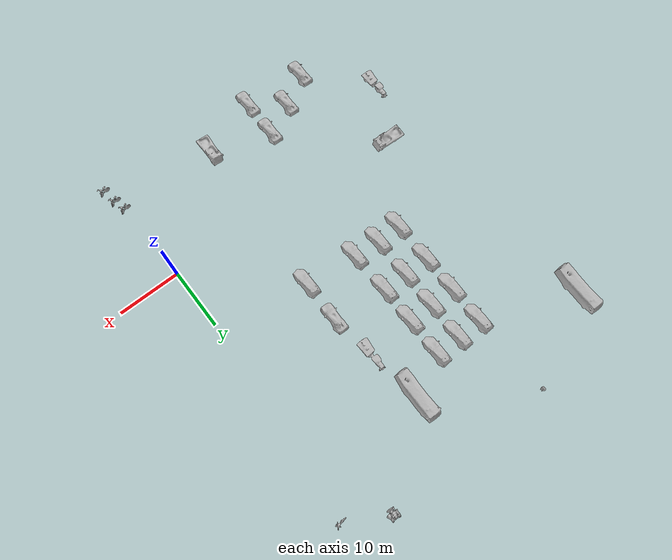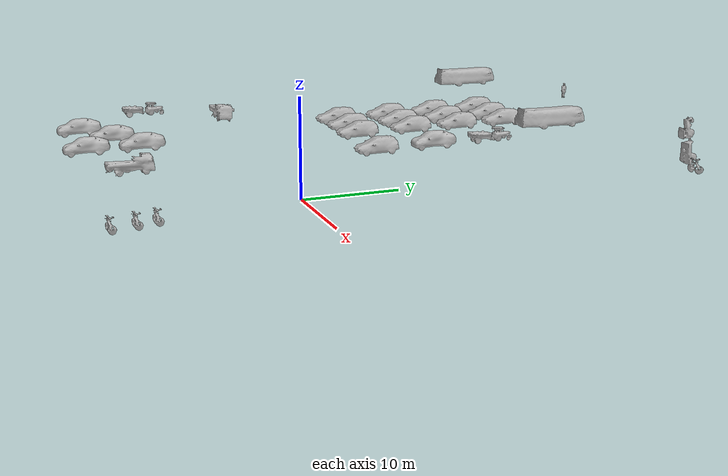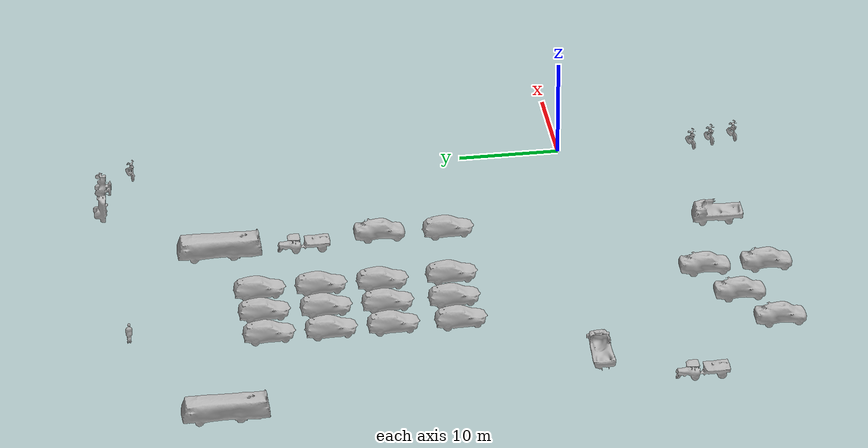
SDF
<sdf version="1.7">
 <world name="smoll_world">
  <model name="ground_plane">
   <static>1</static>
   <link name="link">
    <collision name="collision">
     <geometry><plane><normal>0 0 1</normal><size>100 100</size></plane></geometry>
     <surface><friction><ode><mu>100</mu><mu2>50</mu2></ode></friction></surface>
    </collision>
   </link>
  </model>
  <model name="kare-bus-2_clone">
   <model name="kare-bus">
    <static>1</static>
    <link name="link">
     <collision name="collision">
      <geometry><mesh><scale>8 8 8</scale><uri>model://kare-bus/meshes/kare-bus.obj</uri></mesh></geometry>
     </collision>
     <visual name="visual">
      <geometry><mesh><scale>8 8 8</scale><uri>model://kare-bus/meshes/kare-bus.obj</uri></mesh></geometry>
     </visual>
    </link>
    <pose>-3.3e-05 -0 -5e-06 1.57109 0.060055 1.57564</pose>
   </model>
   <static>0</static>
   <pose>-16.5988 36.2057 2.05341 0 0 1.55954</pose>
  </model>
  <model name="kare-bus-2_clone_0">
   <model name="kare-bus">
    <static>1</static>
    <link name="link">
     <collision name="collision">
      <geometry><mesh><scale>8 8 8</scale><uri>model://kare-bus/meshes/kare-bus.obj</uri></mesh></geometry>
     </collision>
     <visual name="visual">
      <geometry><mesh><scale>8 8 8</scale><uri>model://kare-bus/meshes/kare-bus.obj</uri></mesh></geometry>
     </visual>
    </link>
    <pose>-3.3e-05 -0 -5e-06 1.57109 0.060055 1.57564</pose>
   </model>
   <static>0</static>
   <pose>-45.2255 38.7045 2.05341 0 -0 1.56846</pose>
  </model>
  <model name="kare-man">
   <static>1</static>
   <link name="link">
    <collision name="collision">
     <geometry>
      <mesh><scale>2 2 2</scale><uri>/home/amadeus/model_editor_models/kare-man/meshes/kare-man.obj</uri></mesh>
     </geometry>
    </collision>
    <visual name="visual">
     <geometry>
      <mesh><scale>2 2 2</scale><uri>/home/amadeus/model_editor_models/kare-man/meshes/kare-man.obj</uri></mesh>
     </geometry>
    </visual>
   </link>
   <pose>-31.2235 46.3855 2.03741 1.57081 -0.001383 1.55971</pose>
  </model>
  <model name="kare-lorry3_clone">
   <model name="kare-lorry2">
    <model name="kare-emptylorry">
     <static>1</static>
     <link name="link">
      <collision name="collision">
       <geometry>
        <mesh>
         <scale>5 5 5</scale>
         <uri>/home/amadeus/model_editor_models/kare-emptylorry/meshes/kare-emptylorry.obj</uri>
        </mesh>
       </geometry>
      </collision>
      <visual name="visual">
       <geometry>
        <mesh>
         <scale>5 5 5</scale>
         <uri>/home/amadeus/model_editor_models/kare-emptylorry/meshes/kare-emptylorry.obj</uri>
        </mesh>
       </geometry>
      </visual>
     </link>
     <pose>-2.6e-05 -2.7e-05 -2e-06 1.55178 -0.050932 -1.58567</pose>
    </model>
    <static>0</static>
    <pose>2e-06 0 0.971266 0 -0 0</pose>
   </model>
   <static>1</static>
   <allow_auto_disable>0</allow_auto_disable>
   <plugin name="model_move" filename="/home/amadeus/Downloads/dev_ws/src/articubot_one/worlds/build/libmodel_move.so"/>
   <pose>-15.5223 -13.4936 -0 0 0 1.55929</pose>
  </model>
  <model name="kare-lorry3_clone_5">
   <model name="kare-lorry2">
    <model name="kare-emptylorry">
     <static>1</static>
     <link name="link">
      <collision name="collision">
       <geometry>
        <mesh>
         <scale>5 5 5</scale>
         <uri>/home/amadeus/model_editor_models/kare-emptylorry/meshes/kare-emptylorry.obj</uri>
        </mesh>
       </geometry>
      </collision>
      <visual name="visual">
       <geometry>
        <mesh>
         <scale>5 5 5</scale>
         <uri>/home/amadeus/model_editor_models/kare-emptylorry/meshes/kare-emptylorry.obj</uri>
        </mesh>
       </geometry>
      </visual>
     </link>
     <pose>-2.6e-05 -2.7e-05 -2e-06 1.55178 -0.050932 -1.58567</pose>
    </model>
    <static>0</static>
    <pose>2e-06 0 0.971266 0 -0 0</pose>
   </model>
   <static>1</static>
   <allow_auto_disable>0</allow_auto_disable>
   <plugin name="model_move" filename="/home/amadeus/Downloads/dev_ws/src/articubot_one/worlds/build/libmodel_move.so"/>
   <pose>-38.9422 2.0981 0 0 -0 0</pose>
  </model>
  <model name="kare-cycle2">
   <model name="kare-cycle2">
    <model name="kare-cycle-2">
     <link name="link">
      <inertial>
       <mass>1</mass>
       <inertia><ixx>1</ixx><ixy>0</ixy><ixz>0</ixz><iyy>1</iyy><iyz>0</iyz><izz>1</izz></inertia>
      </inertial>
      <visual name="visual">
       <geometry><mesh><scale>2 2 2</scale><uri>model://kare-cycle/meshes/kare-cycle.obj</uri></mesh></geometry>
       <material><shader type="pixel"/></material>
      </visual>
      <collision name="collision">
       <geometry>
        <mesh><uri>/home/amadeus/model_editor_models/kare-cycle/meshes/kare-cycle.obj</uri><scale>2 2 2</scale></mesh>
       </geometry>
       <surface>
        <friction>
         <ode><mu>1</mu><mu2>1</mu2><fdir1>0 0 0</fdir1><slip1>0</slip1><slip2>0</slip2></ode>
         <torsional>
          <coefficient>1</coefficient>
          <patch_radius>0</patch_radius>
          <surface_radius>0</surface_radius>
          <use_patch_radius>1</use_patch_radius>
          <ode><slip>0</slip></ode>
         </torsional>
        </friction>
        <bounce><restitution_coefficient>0</restitution_coefficient><threshold>1e+06</threshold></bounce>
        <contact>
         <collide_without_contact>0</collide_without_contact>
         <collide_without_contact_bitmask>1</collide_without_contact_bitmask>
         <collide_bitmask>1</collide_bitmask>
         <ode>
          <soft_cfm>0</soft_cfm>
          <soft_erp>0.2</soft_erp>
          <kp>1e+13</kp>
          <kd>1</kd>
          <max_vel>0.01</max_vel>
          <min_depth>0</min_depth>
         </ode>
         <bullet>
          <split_impulse>1</split_impulse>
          <split_impulse_penetration_threshold>-0.01</split_impulse_penetration_threshold>
          <soft_cfm>0</soft_cfm>
          <soft_erp>0.2</soft_erp>
          <kp>1e+13</kp>
          <kd>1</kd>
         </bullet>
        </contact>
       </surface>
      </collision>
     </link>
     <static>1</static>
     <pose>4.5e-05 3e-06 6e-06 1.56443 -0.051805 1.69313</pose>
    </model>
    <static>0</static>
    <pose>9e-06 4e-06 -1e-06 0 -0 0</pose>
   </model>
   <static>0</static>
   <pose>2.25711 43.0319 0 0 0 0</pose>
  </model>
  <model name="kare-whitecar">
   <static>1</static>
   <link name="roof_link">
    <pose>0 0 3 0 -0 0</pose>
    <self_collide>1</self_collide>
    <enable_wind>1</enable_wind>
    <kinematic>1</kinematic>
   </link>
   <link name="link">
    <collision name="collision">
     <geometry>
      <mesh>
       <scale>5 5 5</scale>
       <uri>/home/amadeus/model_editor_models/kare-whitecar/meshes/kare-whitecar.obj</uri>
      </mesh>
     </geometry>
    </collision>
    <visual name="visual">
     <geometry>
      <mesh>
       <scale>5 5 5</scale>
       <uri>/home/amadeus/model_editor_models/kare-whitecar/meshes/kare-whitecar.obj</uri>
      </mesh>
     </geometry>
    </visual>
   </link>
   <pose>-14.2865 20.1093 1.09307 1.53975 -0 0</pose>
  </model>
  <model name="kare-redcar">
   <static>1</static>
   <link name="link">
    <collision name="collision">
     <geometry><mesh><scale>5 5 5</scale><uri>model://kare-redcar/meshes/kare-redcar.obj</uri></mesh></geometry>
    </collision>
    <visual name="visual">
     <geometry><mesh><scale>5 5 5</scale><uri>model://kare-redcar/meshes/kare-redcar.obj</uri></mesh></geometry>
    </visual>
   </link>
   <pose>-14.3919 13.2984 1.05721 1.56187 -0 0</pose>
  </model>
  <model name="kare-truck">
   <static>1</static>
   <link name="link">
    <collision name="collision">
     <geometry><mesh><scale>5 5 5</scale><uri>model://kare-truck/meshes/kare-truck.obj</uri></mesh></geometry>
    </collision>
    <visual name="visual">
     <geometry><mesh><scale>5 5 5</scale><uri>model://kare-truck/meshes/kare-truck.obj</uri></mesh></geometry>
    </visual>
   </link>
   <pose>-15.3088 27.6444 0.797515 1.55509 -0 0</pose>
  </model>
  <model name="kare-truck_clone">
   <static>1</static>
   <link name="link">
    <collision name="collision">
     <geometry><mesh><scale>5 5 5</scale><uri>model://kare-truck/meshes/kare-truck.obj</uri></mesh></geometry>
    </collision>
    <visual name="visual">
     <geometry><mesh><scale>5 5 5</scale><uri>model://kare-truck/meshes/kare-truck.obj</uri></mesh></geometry>
    </visual>
   </link>
   <pose>-4.02275 46.5958 0.931027 -3.08117 -0 0</pose>
  </model>
  <model name="kare-truck_clone_1">
   <static>1</static>
   <link name="link">
    <collision name="collision">
     <geometry><mesh><scale>5 5 5</scale><uri>model://kare-truck/meshes/kare-truck.obj</uri></mesh></geometry>
    </collision>
    <visual name="visual">
     <geometry><mesh><scale>5 5 5</scale><uri>model://kare-truck/meshes/kare-truck.obj</uri></mesh></geometry>
    </visual>
   </link>
   <pose>-43.4966 -6.94322 0.931027 1.55509 -0 0</pose>
  </model>
  <model name="kare-redcar_clone">
   <static>1</static>
   <link name="link">
    <collision name="collision">
     <geometry><mesh><scale>5 5 5</scale><uri>model://kare-redcar/meshes/kare-redcar.obj</uri></mesh></geometry>
    </collision>
    <visual name="visual">
     <geometry><mesh><scale>5 5 5</scale><uri>model://kare-redcar/meshes/kare-redcar.obj</uri></mesh></geometry>
    </visual>
   </link>
   <pose>-22.7453 14.178 1.05721 1.56187 -0 0</pose>
  </model>
  <model name="kare-redcar_clone_0">
   <static>1</static>
   <link name="link">
    <collision name="collision">
     <geometry><mesh><scale>5 5 5</scale><uri>model://kare-redcar/meshes/kare-redcar.obj</uri></mesh></geometry>
    </collision>
    <visual name="visual">
     <geometry><mesh><scale>5 5 5</scale><uri>model://kare-redcar/meshes/kare-redcar.obj</uri></mesh></geometry>
    </visual>
   </link>
   <pose>-27 14.5179 1.05721 1.56187 -0 0</pose>
  </model>
  <model name="kare-redcar_clone_1">
   <static>1</static>
   <link name="link">
    <collision name="collision">
     <geometry><mesh><scale>5 5 5</scale><uri>model://kare-redcar/meshes/kare-redcar.obj</uri></mesh></geometry>
    </collision>
    <visual name="visual">
     <geometry><mesh><scale>5 5 5</scale><uri>model://kare-redcar/meshes/kare-redcar.obj</uri></mesh></geometry>
    </visual>
   </link>
   <pose>-31 14.4476 1.05721 1.56187 -0 0</pose>
  </model>
  <model name="kare-redcar_clone_2">
   <static>1</static>
   <link name="link">
    <collision name="collision">
     <geometry><mesh><scale>5 5 5</scale><uri>model://kare-redcar/meshes/kare-redcar.obj</uri></mesh></geometry>
    </collision>
    <visual name="visual">
     <geometry><mesh><scale>5 5 5</scale><uri>model://kare-redcar/meshes/kare-redcar.obj</uri></mesh></geometry>
    </visual>
   </link>
   <pose>-23 21 1.05721 1.56187 -0 0</pose>
  </model>
  <model name="kare-redcar_clone_3">
   <static>1</static>
   <link name="link">
    <collision name="collision">
     <geometry><mesh><scale>5 5 5</scale><uri>model://kare-redcar/meshes/kare-redcar.obj</uri></mesh></geometry>
    </collision>
    <visual name="visual">
     <geometry><mesh><scale>5 5 5</scale><uri>model://kare-redcar/meshes/kare-redcar.obj</uri></mesh></geometry>
    </visual>
   </link>
   <pose>-27 21 1.05721 1.56187 -0 0</pose>
  </model>
  <model name="kare-redcar_clone_4">
   <static>1</static>
   <link name="link">
    <collision name="collision">
     <geometry><mesh><scale>5 5 5</scale><uri>model://kare-redcar/meshes/kare-redcar.obj</uri></mesh></geometry>
    </collision>
    <visual name="visual">
     <geometry><mesh><scale>5 5 5</scale><uri>model://kare-redcar/meshes/kare-redcar.obj</uri></mesh></geometry>
    </visual>
   </link>
   <pose>-31 21 1.05721 1.56187 -0 0</pose>
  </model>
  <model name="kare-redcar_clone_5">
   <static>1</static>
   <link name="link">
    <collision name="collision">
     <geometry><mesh><scale>5 5 5</scale><uri>model://kare-redcar/meshes/kare-redcar.obj</uri></mesh></geometry>
    </collision>
    <visual name="visual">
     <geometry><mesh><scale>5 5 5</scale><uri>model://kare-redcar/meshes/kare-redcar.obj</uri></mesh></geometry>
    </visual>
   </link>
   <pose>-23 27 1.05721 1.56187 -0 0</pose>
  </model>
  <model name="kare-redcar_clone_6">
   <static>1</static>
   <link name="link">
    <collision name="collision">
     <geometry><mesh><scale>5 5 5</scale><uri>model://kare-redcar/meshes/kare-redcar.obj</uri></mesh></geometry>
    </collision>
    <visual name="visual">
     <geometry><mesh><scale>5 5 5</scale><uri>model://kare-redcar/meshes/kare-redcar.obj</uri></mesh></geometry>
    </visual>
   </link>
   <pose>-27 27 1.05721 1.56187 -0 0</pose>
  </model>
  <model name="kare-redcar_clone_7">
   <static>1</static>
   <link name="link">
    <collision name="collision">
     <geometry><mesh><scale>5 5 5</scale><uri>model://kare-redcar/meshes/kare-redcar.obj</uri></mesh></geometry>
    </collision>
    <visual name="visual">
     <geometry><mesh><scale>5 5 5</scale><uri>model://kare-redcar/meshes/kare-redcar.obj</uri></mesh></geometry>
    </visual>
   </link>
   <pose>-31 27 1.05721 1.56187 -0 0</pose>
  </model>
  <model name="kare-redcar_clone_8">
   <static>1</static>
   <link name="link">
    <collision name="collision">
     <geometry><mesh><scale>5 5 5</scale><uri>model://kare-redcar/meshes/kare-redcar.obj</uri></mesh></geometry>
    </collision>
    <visual name="visual">
     <geometry><mesh><scale>5 5 5</scale><uri>model://kare-redcar/meshes/kare-redcar.obj</uri></mesh></geometry>
    </visual>
   </link>
   <pose>-23 33 1.05721 1.56187 -0 0</pose>
  </model>
  <model name="kare-redcar_clone_9">
   <static>1</static>
   <link name="link">
    <collision name="collision">
     <geometry><mesh><scale>5 5 5</scale><uri>model://kare-redcar/meshes/kare-redcar.obj</uri></mesh></geometry>
    </collision>
    <visual name="visual">
     <geometry><mesh><scale>5 5 5</scale><uri>model://kare-redcar/meshes/kare-redcar.obj</uri></mesh></geometry>
    </visual>
   </link>
   <pose>-27 33 1.05721 1.56187 -0 0</pose>
  </model>
  <model name="kare-redcar_clone_10">
   <static>1</static>
   <link name="link">
    <collision name="collision">
     <geometry><mesh><scale>5 5 5</scale><uri>model://kare-redcar/meshes/kare-redcar.obj</uri></mesh></geometry>
    </collision>
    <visual name="visual">
     <geometry><mesh><scale>5 5 5</scale><uri>model://kare-redcar/meshes/kare-redcar.obj</uri></mesh></geometry>
    </visual>
   </link>
   <pose>-31 33 1.05721 1.56187 -0 0</pose>
  </model>
  <model name="kare-whitecar_clone">
   <static>1</static>
   <link name="roof_link">
    <pose>0 0 3 0 -0 0</pose>
    <self_collide>1</self_collide>
    <enable_wind>1</enable_wind>
    <kinematic>1</kinematic>
   </link>
   <link name="link">
    <collision name="collision">
     <geometry>
      <mesh>
       <scale>5 5 5</scale>
       <uri>/home/amadeus/model_editor_models/kare-whitecar/meshes/kare-whitecar.obj</uri>
      </mesh>
     </geometry>
    </collision>
    <visual name="visual">
     <geometry>
      <mesh>
       <scale>5 5 5</scale>
       <uri>/home/amadeus/model_editor_models/kare-whitecar/meshes/kare-whitecar.obj</uri>
      </mesh>
     </geometry>
    </visual>
   </link>
   <pose>-24.9422 -10.487 1.09307 1.53975 -0 0</pose>
  </model>
  <model name="kare-whitecar_clone_0">
   <static>1</static>
   <link name="roof_link">
    <pose>0 0 3 0 -0 0</pose>
    <self_collide>1</self_collide>
    <enable_wind>1</enable_wind>
    <kinematic>1</kinematic>
   </link>
   <link name="link">
    <collision name="collision">
     <geometry>
      <mesh>
       <scale>5 5 5</scale>
       <uri>/home/amadeus/model_editor_models/kare-whitecar/meshes/kare-whitecar.obj</uri>
      </mesh>
     </geometry>
    </collision>
    <visual name="visual">
     <geometry>
      <mesh>
       <scale>5 5 5</scale>
       <uri>/home/amadeus/model_editor_models/kare-whitecar/meshes/kare-whitecar.obj</uri>
      </mesh>
     </geometry>
    </visual>
   </link>
   <pose>-25 -16.589 1.09307 1.53975 -0 0</pose>
  </model>
  <model name="kare-whitecar_clone_3">
   <static>1</static>
   <link name="roof_link">
    <pose>0 0 3 0 -0 0</pose>
    <self_collide>1</self_collide>
    <enable_wind>1</enable_wind>
    <kinematic>1</kinematic>
   </link>
   <link name="link">
    <collision name="collision">
     <geometry>
      <mesh>
       <scale>5 5 5</scale>
       <uri>/home/amadeus/model_editor_models/kare-whitecar/meshes/kare-whitecar.obj</uri>
      </mesh>
     </geometry>
    </collision>
    <visual name="visual">
     <geometry>
      <mesh>
       <scale>5 5 5</scale>
       <uri>/home/amadeus/model_editor_models/kare-whitecar/meshes/kare-whitecar.obj</uri>
      </mesh>
     </geometry>
    </visual>
   </link>
   <pose>-30 -13 1.09307 1.53975 -0 0</pose>
  </model>
  <model name="kare-whitecar_clone_6">
   <static>1</static>
   <link name="roof_link">
    <pose>0 0 3 0 -0 0</pose>
    <self_collide>1</self_collide>
    <enable_wind>1</enable_wind>
    <kinematic>1</kinematic>
   </link>
   <link name="link">
    <collision name="collision">
     <geometry>
      <mesh>
       <scale>5 5 5</scale>
       <uri>/home/amadeus/model_editor_models/kare-whitecar/meshes/kare-whitecar.obj</uri>
      </mesh>
     </geometry>
    </collision>
    <visual name="visual">
     <geometry>
      <mesh>
       <scale>5 5 5</scale>
       <uri>/home/amadeus/model_editor_models/kare-whitecar/meshes/kare-whitecar.obj</uri>
      </mesh>
     </geometry>
    </visual>
   </link>
   <pose>-35 -16 1.09307 1.53975 -0 0</pose>
  </model>
  <model name="kare-cycle2_clone_11">
   <model name="kare-cycle2">
    <model name="kare-cycle-2">
     <link name="link">
      <inertial>
       <mass>1</mass>
       <inertia><ixx>1</ixx><ixy>0</ixy><ixz>0</ixz><iyy>1</iyy><iyz>0</iyz><izz>1</izz></inertia>
      </inertial>
      <visual name="visual">
       <geometry><mesh><scale>2 2 2</scale><uri>model://kare-cycle/meshes/kare-cycle.obj</uri></mesh></geometry>
       <material><shader type="pixel"/></material>
      </visual>
      <collision name="collision">
       <geometry>
        <mesh><uri>/home/amadeus/model_editor_models/kare-cycle/meshes/kare-cycle.obj</uri><scale>2 2 2</scale></mesh>
       </geometry>
       <surface>
        <friction>
         <ode><mu>1</mu><mu2>1</mu2><fdir1>0 0 0</fdir1><slip1>0</slip1><slip2>0</slip2></ode>
         <torsional>
          <coefficient>1</coefficient>
          <patch_radius>0</patch_radius>
          <surface_radius>0</surface_radius>
          <use_patch_radius>1</use_patch_radius>
          <ode><slip>0</slip></ode>
         </torsional>
        </friction>
        <bounce><restitution_coefficient>0</restitution_coefficient><threshold>1e+06</threshold></bounce>
        <contact>
         <collide_without_contact>0</collide_without_contact>
         <collide_without_contact_bitmask>1</collide_without_contact_bitmask>
         <collide_bitmask>1</collide_bitmask>
         <ode>
          <soft_cfm>0</soft_cfm>
          <soft_erp>0.2</soft_erp>
          <kp>1e+13</kp>
          <kd>1</kd>
          <max_vel>0.01</max_vel>
          <min_depth>0</min_depth>
         </ode>
         <bullet>
          <split_impulse>1</split_impulse>
          <split_impulse_penetration_threshold>-0.01</split_impulse_penetration_threshold>
          <soft_cfm>0</soft_cfm>
          <soft_erp>0.2</soft_erp>
          <kp>1e+13</kp>
          <kd>1</kd>
         </bullet>
        </contact>
       </surface>
      </collision>
     </link>
     <static>1</static>
     <pose>4.5e-05 3e-06 6e-06 1.56443 -0.051805 1.69313</pose>
    </model>
    <static>0</static>
    <pose>9e-06 4e-06 -1e-06 0 -0 0</pose>
   </model>
   <static>0</static>
   <pose>0.462435 -14 0 0 0 0</pose>
  </model>
  <model name="kare-cycle2_clone_12">
   <model name="kare-cycle2">
    <model name="kare-cycle-2">
     <link name="link">
      <inertial>
       <mass>1</mass>
       <inertia><ixx>1</ixx><ixy>0</ixy><ixz>0</ixz><iyy>1</iyy><iyz>0</iyz><izz>1</izz></inertia>
      </inertial>
      <visual name="visual">
       <geometry><mesh><scale>2 2 2</scale><uri>model://kare-cycle/meshes/kare-cycle.obj</uri></mesh></geometry>
       <material><shader type="pixel"/></material>
      </visual>
      <collision name="collision">
       <geometry>
        <mesh><uri>/home/amadeus/model_editor_models/kare-cycle/meshes/kare-cycle.obj</uri><scale>2 2 2</scale></mesh>
       </geometry>
       <surface>
        <friction>
         <ode><mu>1</mu><mu2>1</mu2><fdir1>0 0 0</fdir1><slip1>0</slip1><slip2>0</slip2></ode>
         <torsional>
          <coefficient>1</coefficient>
          <patch_radius>0</patch_radius>
          <surface_radius>0</surface_radius>
          <use_patch_radius>1</use_patch_radius>
          <ode><slip>0</slip></ode>
         </torsional>
        </friction>
        <bounce><restitution_coefficient>0</restitution_coefficient><threshold>1e+06</threshold></bounce>
        <contact>
         <collide_without_contact>0</collide_without_contact>
         <collide_without_contact_bitmask>1</collide_without_contact_bitmask>
         <collide_bitmask>1</collide_bitmask>
         <ode>
          <soft_cfm>0</soft_cfm>
          <soft_erp>0.2</soft_erp>
          <kp>1e+13</kp>
          <kd>1</kd>
          <max_vel>0.01</max_vel>
          <min_depth>0</min_depth>
         </ode>
         <bullet>
          <split_impulse>1</split_impulse>
          <split_impulse_penetration_threshold>-0.01</split_impulse_penetration_threshold>
          <soft_cfm>0</soft_cfm>
          <soft_erp>0.2</soft_erp>
          <kp>1e+13</kp>
          <kd>1</kd>
         </bullet>
        </contact>
       </surface>
      </collision>
     </link>
     <static>1</static>
     <pose>4.5e-05 3e-06 6e-06 1.56443 -0.051805 1.69313</pose>
    </model>
    <static>0</static>
    <pose>9e-06 4e-06 -1e-06 0 -0 0</pose>
   </model>
   <static>0</static>
   <pose>1 -16 0 0 0 0</pose>
  </model>
  <model name="kare-cycle2_clone_13">
   <model name="kare-cycle2">
    <model name="kare-cycle-2">
     <link name="link">
      <inertial>
       <mass>1</mass>
       <inertia><ixx>1</ixx><ixy>0</ixy><ixz>0</ixz><iyy>1</iyy><iyz>0</iyz><izz>1</izz></inertia>
      </inertial>
      <visual name="visual">
       <geometry><mesh><scale>2 2 2</scale><uri>model://kare-cycle/meshes/kare-cycle.obj</uri></mesh></geometry>
       <material><shader type="pixel"/></material>
      </visual>
      <collision name="collision">
       <geometry>
        <mesh><uri>/home/amadeus/model_editor_models/kare-cycle/meshes/kare-cycle.obj</uri><scale>2 2 2</scale></mesh>
       </geometry>
       <surface>
        <friction>
         <ode><mu>1</mu><mu2>1</mu2><fdir1>0 0 0</fdir1><slip1>0</slip1><slip2>0</slip2></ode>
         <torsional>
          <coefficient>1</coefficient>
          <patch_radius>0</patch_radius>
          <surface_radius>0</surface_radius>
          <use_patch_radius>1</use_patch_radius>
          <ode><slip>0</slip></ode>
         </torsional>
        </friction>
        <bounce><restitution_coefficient>0</restitution_coefficient><threshold>1e+06</threshold></bounce>
        <contact>
         <collide_without_contact>0</collide_without_contact>
         <collide_without_contact_bitmask>1</collide_without_contact_bitmask>
         <collide_bitmask>1</collide_bitmask>
         <ode>
          <soft_cfm>0</soft_cfm>
          <soft_erp>0.2</soft_erp>
          <kp>1e+13</kp>
          <kd>1</kd>
          <max_vel>0.01</max_vel>
          <min_depth>0</min_depth>
         </ode>
         <bullet>
          <split_impulse>1</split_impulse>
          <split_impulse_penetration_threshold>-0.01</split_impulse_penetration_threshold>
          <soft_cfm>0</soft_cfm>
          <soft_erp>0.2</soft_erp>
          <kp>1e+13</kp>
          <kd>1</kd>
         </bullet>
        </contact>
       </surface>
      </collision>
     </link>
     <static>1</static>
     <pose>4.5e-05 3e-06 6e-06 1.56443 -0.051805 1.69313</pose>
    </model>
    <static>0</static>
    <pose>9e-06 4e-06 -1e-06 0 -0 0</pose>
   </model>
   <static>0</static>
   <pose>1.47409 -18.4446 0 0 0 0</pose>
  </model>
 </world>
</sdf>
